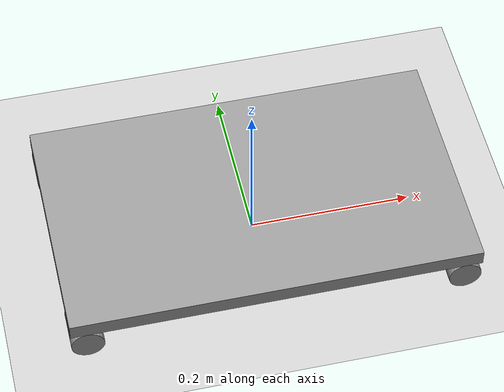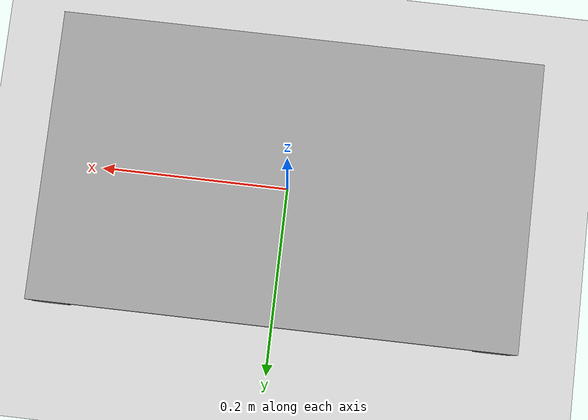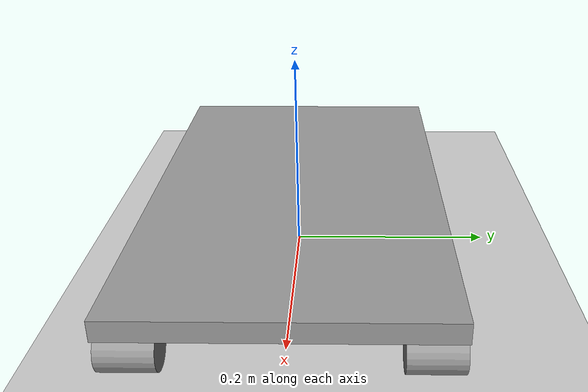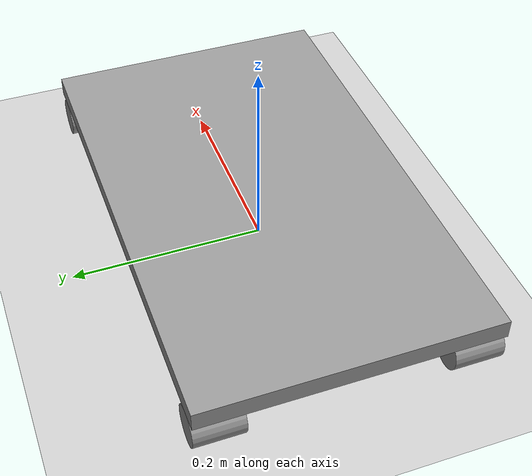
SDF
<?xml version="1.0" ?>
<sdf version="1.5">
  <world name="default">

    <!-- A global light source -->
    <include>
      <uri>model://sun</uri>
    </include>

    <!-- A ground plane -->
    <include>
      <uri>model://ground_plane</uri>
    </include>

    <model name="skate">
      <include>
        <uri>model://skate</uri>
      </include>

      <!-- Attach the plugin to this model -->
      <plugin name="skate_control" filename="libskate_plugin.so">
      </plugin>
    </model>

  </world>
</sdf>

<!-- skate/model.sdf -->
<sdf version='1.6'>
  <model name='skate'>
    <pose frame=''>0 0 0.03 0 -0 0</pose>
    <link name='roda1'>
      <pose frame=''>-0.23 -0.125 -0.006 0 -0 0</pose>
      <inertial>
        <mass>0.001</mass>
        <inertia>
          <ixx>0.145833</ixx>
          <ixy>0</ixy>
          <ixz>0</ixz>
          <iyy>0.145833</iyy>
          <iyz>0</iyz>
          <izz>0.125</izz>
        </inertia>
        <pose frame=''>0 0 0 0 -0 0</pose>
      </inertial>
      <self_collide>0</self_collide>
      <kinematic>0</kinematic>
      <visual name='visual'>
        <pose frame=''>0 0 0 1.5708 -0 0</pose>
        <geometry>
          <cylinder>
            <radius>0.02</radius>
            <length>0.05</length>
          </cylinder>
        </geometry>
        <material>
          <lighting>1</lighting>
          <script>
            <uri>file://media/materials/scripts/gazebo.material</uri>
            <name>Gazebo/Grey</name>
          </script>
          <shader type='pixel'>
            <normal_map>__default__</normal_map>
          </shader>
          <ambient>0.3 0.3 0.3 1</ambient>
          <diffuse>0.7 0.7 0.7 1</diffuse>
          <specular>0.01 0.01 0.01 1</specular>
          <emissive>0 0 0 1</emissive>
        </material>
        <transparency>0</transparency>
        <cast_shadows>1</cast_shadows>
      </visual>
      <collision name='collision'>
        <laser_retro>0</laser_retro>
        <max_contacts>10</max_contacts>
        <pose frame=''>0 0 0 1.5708 -0 0</pose>
        <geometry>
          <cylinder>
            <radius>0.02</radius>
            <length>0.05</length>
          </cylinder>
        </geometry>
        <surface>
          <friction>
            <ode>
              <mu>1</mu>
              <mu2>1</mu2>
              <fdir1>0 0 0</fdir1>
              <slip1>0</slip1>
              <slip2>0</slip2>
            </ode>
            <torsional>
              <coefficient>1</coefficient>
              <patch_radius>0</patch_radius>
              <surface_radius>0</surface_radius>
              <use_patch_radius>1</use_patch_radius>
              <ode>
                <slip>0</slip>
              </ode>
            </torsional>
          </friction>
          <bounce>
            <restitution_coefficient>0</restitution_coefficient>
            <threshold>1e+06</threshold>
          </bounce>
          <contact>
            <collide_without_contact>0</collide_without_contact>
            <collide_without_contact_bitmask>1</collide_without_contact_bitmask>
            <collide_bitmask>1</collide_bitmask>
            <ode>
              <soft_cfm>0</soft_cfm>
              <soft_erp>0.2</soft_erp>
              <kp>1e+13</kp>
              <kd>1</kd>
              <max_vel>0.01</max_vel>
              <min_depth>0</min_depth>
            </ode>
            <bullet>
              <split_impulse>1</split_impulse>
              <split_impulse_penetration_threshold>-0.01</split_impulse_penetration_threshold>
              <soft_cfm>0</soft_cfm>
              <soft_erp>0.2</soft_erp>
              <kp>1e+13</kp>
              <kd>1</kd>
            </bullet>
          </contact>
        </surface>
      </collision>
    </link>
    <link name='roda2'>
      <pose frame=''>0.23 -0.125 -0.006 0 -0 0</pose>
      <inertial>
        <mass>0.001</mass>
        <inertia>
          <ixx>0.145833</ixx>
          <ixy>0</ixy>
          <ixz>0</ixz>
          <iyy>0.145833</iyy>
          <iyz>0</iyz>
          <izz>0.125</izz>
        </inertia>
        <pose frame=''>0 0 0 0 -0 0</pose>
      </inertial>
      <self_collide>0</self_collide>
      <kinematic>0</kinematic>
      <visual name='visual'>
        <pose frame=''>0 0 0 1.5708 -0 0</pose>
        <geometry>
          <cylinder>
            <radius>0.02</radius>
            <length>0.05</length>
          </cylinder>
        </geometry>
        <material>
          <lighting>1</lighting>
          <script>
            <uri>file://media/materials/scripts/gazebo.material</uri>
            <name>Gazebo/Grey</name>
          </script>
          <shader type='pixel'>
            <normal_map>__default__</normal_map>
          </shader>
          <ambient>0.3 0.3 0.3 1</ambient>
          <diffuse>0.7 0.7 0.7 1</diffuse>
          <specular>0.01 0.01 0.01 1</specular>
          <emissive>0 0 0 1</emissive>
        </material>
        <transparency>0</transparency>
        <cast_shadows>1</cast_shadows>
      </visual>
      <collision name='collision'>
        <laser_retro>0</laser_retro>
        <max_contacts>10</max_contacts>
        <pose frame=''>0 0 0 1.5708 -0 0</pose>
        <geometry>
          <cylinder>
            <radius>0.02</radius>
            <length>0.05</length>
          </cylinder>
        </geometry>
        <surface>
          <friction>
            <ode>
              <mu>1</mu>
              <mu2>1</mu2>
              <fdir1>0 0 0</fdir1>
              <slip1>0</slip1>
              <slip2>0</slip2>
            </ode>
            <torsional>
              <coefficient>1</coefficient>
              <patch_radius>0</patch_radius>
              <surface_radius>0</surface_radius>
              <use_patch_radius>1</use_patch_radius>
              <ode>
                <slip>0</slip>
              </ode>
            </torsional>
          </friction>
          <bounce>
            <restitution_coefficient>0</restitution_coefficient>
            <threshold>1e+06</threshold>
          </bounce>
          <contact>
            <collide_without_contact>0</collide_without_contact>
            <collide_without_contact_bitmask>1</collide_without_contact_bitmask>
            <collide_bitmask>1</collide_bitmask>
            <ode>
              <soft_cfm>0</soft_cfm>
              <soft_erp>0.2</soft_erp>
              <kp>1e+13</kp>
              <kd>1</kd>
              <max_vel>0.01</max_vel>
              <min_depth>0</min_depth>
            </ode>
            <bullet>
              <split_impulse>1</split_impulse>
              <split_impulse_penetration_threshold>-0.01</split_impulse_penetration_threshold>
              <soft_cfm>0</soft_cfm>
              <soft_erp>0.2</soft_erp>
              <kp>1e+13</kp>
              <kd>1</kd>
            </bullet>
          </contact>
        </surface>
      </collision>
    </link>
    <link name='roda3'>
      <pose frame=''>-0.23 0.125 -0.006 0 -0 0</pose>
      <inertial>
        <mass>0.001</mass>
        <inertia>
          <ixx>0.145833</ixx>
          <ixy>0</ixy>
          <ixz>0</ixz>
          <iyy>0.145833</iyy>
          <iyz>0</iyz>
          <izz>0.125</izz>
        </inertia>
        <pose frame=''>0 0 0 0 -0 0</pose>
      </inertial>
      <self_collide>0</self_collide>
      <kinematic>0</kinematic>
      <visual name='visual'>
        <pose frame=''>0 0 0 1.5708 -0 0</pose>
        <geometry>
          <cylinder>
            <radius>0.02</radius>
            <length>0.05</length>
          </cylinder>
        </geometry>
        <material>
          <lighting>1</lighting>
          <script>
            <uri>file://media/materials/scripts/gazebo.material</uri>
            <name>Gazebo/Grey</name>
          </script>
          <shader type='pixel'>
            <normal_map>__default__</normal_map>
          </shader>
          <ambient>0.3 0.3 0.3 1</ambient>
          <diffuse>0.7 0.7 0.7 1</diffuse>
          <specular>0.01 0.01 0.01 1</specular>
          <emissive>0 0 0 1</emissive>
        </material>
        <transparency>0</transparency>
        <cast_shadows>1</cast_shadows>
      </visual>
      <collision name='collision'>
        <laser_retro>0</laser_retro>
        <max_contacts>10</max_contacts>
        <pose frame=''>0 0 0 1.5708 -0 0</pose>
        <geometry>
          <cylinder>
            <radius>0.02</radius>
            <length>0.05</length>
          </cylinder>
        </geometry>
        <surface>
          <friction>
            <ode>
              <mu>1</mu>
              <mu2>1</mu2>
              <fdir1>0 0 0</fdir1>
              <slip1>0</slip1>
              <slip2>0</slip2>
            </ode>
            <torsional>
              <coefficient>1</coefficient>
              <patch_radius>0</patch_radius>
              <surface_radius>0</surface_radius>
              <use_patch_radius>1</use_patch_radius>
              <ode>
                <slip>0</slip>
              </ode>
            </torsional>
          </friction>
          <bounce>
            <restitution_coefficient>0</restitution_coefficient>
            <threshold>1e+06</threshold>
          </bounce>
          <contact>
            <collide_without_contact>0</collide_without_contact>
            <collide_without_contact_bitmask>1</collide_without_contact_bitmask>
            <collide_bitmask>1</collide_bitmask>
            <ode>
              <soft_cfm>0</soft_cfm>
              <soft_erp>0.2</soft_erp>
              <kp>1e+13</kp>
              <kd>1</kd>
              <max_vel>0.01</max_vel>
              <min_depth>0</min_depth>
            </ode>
            <bullet>
              <split_impulse>1</split_impulse>
              <split_impulse_penetration_threshold>-0.01</split_impulse_penetration_threshold>
              <soft_cfm>0</soft_cfm>
              <soft_erp>0.2</soft_erp>
              <kp>1e+13</kp>
              <kd>1</kd>
            </bullet>
          </contact>
        </surface>
      </collision>
    </link>
    <link name='roda4'>
      <pose frame=''>0.23 0.125 -0.006 0 -0 0</pose>
      <inertial>
        <mass>0.001</mass>
        <inertia>
          <ixx>0.145833</ixx>
          <ixy>0</ixy>
          <ixz>0</ixz>
          <iyy>0.145833</iyy>
          <iyz>0</iyz>
          <izz>0.125</izz>
        </inertia>
        <pose frame=''>0 0 0 0 -0 0</pose>
      </inertial>
      <self_collide>0</self_collide>
      <kinematic>0</kinematic>
      <visual name='visual'>
        <pose frame=''>0 0 0 1.5708 -0 0</pose>
        <geometry>
          <cylinder>
            <radius>0.02</radius>
            <length>0.05</length>
          </cylinder>
        </geometry>
        <material>
          <lighting>1</lighting>
          <script>
            <uri>file://media/materials/scripts/gazebo.material</uri>
            <name>Gazebo/Grey</name>
          </script>
          <shader type='pixel'>
            <normal_map>__default__</normal_map>
          </shader>
          <ambient>0.3 0.3 0.3 1</ambient>
          <diffuse>0.7 0.7 0.7 1</diffuse>
          <specular>0.01 0.01 0.01 1</specular>
          <emissive>0 0 0 1</emissive>
        </material>
        <transparency>0</transparency>
        <cast_shadows>1</cast_shadows>
      </visual>
      <collision name='collision'>
        <laser_retro>0</laser_retro>
        <max_contacts>10</max_contacts>
        <pose frame=''>0 0 0 1.5708 -0 0</pose>
        <geometry>
          <cylinder>
            <radius>0.02</radius>
            <length>0.05</length>
          </cylinder>
        </geometry>
        <surface>
          <friction>
            <ode>
              <mu>1</mu>
              <mu2>1</mu2>
              <fdir1>0 0 0</fdir1>
              <slip1>0</slip1>
              <slip2>0</slip2>
            </ode>
            <torsional>
              <coefficient>1</coefficient>
              <patch_radius>0</patch_radius>
              <surface_radius>0</surface_radius>
              <use_patch_radius>1</use_patch_radius>
              <ode>
                <slip>0</slip>
              </ode>
            </torsional>
          </friction>
          <bounce>
            <restitution_coefficient>0</restitution_coefficient>
            <threshold>1e+06</threshold>
          </bounce>
          <contact>
            <collide_without_contact>0</collide_without_contact>
            <collide_without_contact_bitmask>1</collide_without_contact_bitmask>
            <collide_bitmask>1</collide_bitmask>
            <ode>
              <soft_cfm>0</soft_cfm>
              <soft_erp>0.2</soft_erp>
              <kp>1e+13</kp>
              <kd>1</kd>
              <max_vel>0.01</max_vel>
              <min_depth>0</min_depth>
            </ode>
            <bullet>
              <split_impulse>1</split_impulse>
              <split_impulse_penetration_threshold>-0.01</split_impulse_penetration_threshold>
              <soft_cfm>0</soft_cfm>
              <soft_erp>0.2</soft_erp>
              <kp>1e+13</kp>
              <kd>1</kd>
            </bullet>
          </contact>
        </surface>
      </collision>
    </link>
    <link name='mainFrame'>
      <pose frame=''>0 0 0.024 0 -0 0</pose>
      <inertial>
        <mass>2</mass>
        <inertia>
          <ixx>0.166667</ixx>
          <ixy>0</ixy>
          <ixz>0</ixz>
          <iyy>0.166667</iyy>
          <iyz>0</iyz>
          <izz>0.166667</izz>
        </inertia>
        <pose frame=''>0 0 0 0 -0 0</pose>
      </inertial>
      <self_collide>0</self_collide>
      <kinematic>0</kinematic>
      <gravity>1</gravity>
      <visual name='visual'>
        <pose frame=''>0 0 0 0 -0 0</pose>
        <geometry>
          <box>
            <size>0.5 0.3 0.02</size>
          </box>
        </geometry>
        <material>
          <lighting>1</lighting>
          <script>
            <uri>file://media/materials/scripts/gazebo.material</uri>
            <name>Gazebo/Grey</name>
          </script>
          <shader type='normal_map_tangent_space'>
            <normal_map>__default__</normal_map>
          </shader>
          <ambient>1 1 1 1</ambient>
          <diffuse>0.7 0.7 0.7 1</diffuse>
          <specular>0.01 0.01 0.01 1</specular>
          <emissive>0 0 0 1</emissive>
        </material>
        <transparency>0</transparency>
        <cast_shadows>1</cast_shadows>
      </visual>
      <collision name='collision'>
        <laser_retro>0</laser_retro>
        <max_contacts>10</max_contacts>
        <pose frame=''>0 0 0 0 -0 0</pose>
        <geometry>
          <box>
            <size>0.5 0.3 0.02</size>
          </box>
        </geometry>
        <surface>
          <friction>
            <ode>
              <mu>1</mu>
              <mu2>1</mu2>
              <fdir1>0 0 0</fdir1>
              <slip1>0</slip1>
              <slip2>0</slip2>
            </ode>
            <torsional>
              <coefficient>1</coefficient>
              <patch_radius>0</patch_radius>
              <surface_radius>0</surface_radius>
              <use_patch_radius>1</use_patch_radius>
              <ode>
                <slip>0</slip>
              </ode>
            </torsional>
          </friction>
          <bounce>
            <restitution_coefficient>0</restitution_coefficient>
            <threshold>1e+06</threshold>
          </bounce>
          <contact>
            <collide_without_contact>0</collide_without_contact>
            <collide_without_contact_bitmask>1</collide_without_contact_bitmask>
            <collide_bitmask>1</collide_bitmask>
            <ode>
              <soft_cfm>0</soft_cfm>
              <soft_erp>0.2</soft_erp>
              <kp>1e+13</kp>
              <kd>1</kd>
              <max_vel>0.01</max_vel>
              <min_depth>0</min_depth>
            </ode>
            <bullet>
              <split_impulse>1</split_impulse>
              <split_impulse_penetration_threshold>-0.01</split_impulse_penetration_threshold>
              <soft_cfm>0</soft_cfm>
              <soft_erp>0.2</soft_erp>
              <kp>1e+13</kp>
              <kd>1</kd>
            </bullet>
          </contact>
        </surface>
      </collision>
    </link>
    <joint name='mainFrame_Roda1' type='revolute'>
      <parent>mainFrame</parent>
      <child>roda1</child>
      <pose frame=''>0 0 0 0 -0 0</pose>
      <axis>
        <xyz>0 1 0</xyz>
        <use_parent_model_frame>0</use_parent_model_frame>
        <limit>
          <lower>-1.79769e+308</lower>
          <upper>1.79769e+308</upper>
          <effort>-1</effort>
          <velocity>-1</velocity>
        </limit>
        <dynamics>
          <spring_reference>0</spring_reference>
          <spring_stiffness>0</spring_stiffness>
          <damping>0</damping>
          <friction>0</friction>
        </dynamics>
      </axis>
      <physics>
        <ode>
          <limit>
            <cfm>0</cfm>
            <erp>0.2</erp>
          </limit>
          <suspension>
            <cfm>0</cfm>
            <erp>0.2</erp>
          </suspension>
        </ode>
      </physics>
    </joint>
    <joint name='mainFrame_Roda2' type='revolute'>
      <parent>mainFrame</parent>
      <child>roda2</child>
      <pose frame=''>0 0 0 0 -0 0</pose>
      <axis>
        <xyz>0 1 0</xyz>
        <use_parent_model_frame>0</use_parent_model_frame>
        <limit>
          <lower>-1.79769e+308</lower>
          <upper>1.79769e+308</upper>
          <effort>-1</effort>
          <velocity>-1</velocity>
        </limit>
        <dynamics>
          <spring_reference>0</spring_reference>
          <spring_stiffness>0</spring_stiffness>
          <damping>0</damping>
          <friction>0</friction>
        </dynamics>
      </axis>
      <physics>
        <ode>
          <limit>
            <cfm>0</cfm>
            <erp>0.2</erp>
          </limit>
          <suspension>
            <cfm>0</cfm>
            <erp>0.2</erp>
          </suspension>
        </ode>
      </physics>
    </joint>
    <joint name='mainFrame_Roda3' type='revolute'>
      <parent>mainFrame</parent>
      <child>roda3</child>
      <pose frame=''>0 0 0 0 -0 0</pose>
      <axis>
        <xyz>0 1 0</xyz>
        <use_parent_model_frame>0</use_parent_model_frame>
        <limit>
          <lower>-1.79769e+308</lower>
          <upper>1.79769e+308</upper>
          <effort>-1</effort>
          <velocity>-1</velocity>
        </limit>
        <dynamics>
          <spring_reference>0</spring_reference>
          <spring_stiffness>0</spring_stiffness>
          <damping>0</damping>
          <friction>0</friction>
        </dynamics>
      </axis>
      <physics>
        <ode>
          <limit>
            <cfm>0</cfm>
            <erp>0.2</erp>
          </limit>
          <suspension>
            <cfm>0</cfm>
            <erp>0.2</erp>
          </suspension>
        </ode>
      </physics>
    </joint>
    <joint name='mainFrame_Roda4' type='revolute'>
      <parent>mainFrame</parent>
      <child>roda4</child>
      <pose frame=''>0 0 0 0 -0 0</pose>
      <axis>
        <xyz>0 1 0</xyz>
        <use_parent_model_frame>0</use_parent_model_frame>
        <limit>
          <lower>-1.79769e+308</lower>
          <upper>1.79769e+308</upper>
          <effort>-1</effort>
          <velocity>-1</velocity>
        </limit>
        <dynamics>
          <spring_reference>0</spring_reference>
          <spring_stiffness>0</spring_stiffness>
          <damping>0</damping>
          <friction>0</friction>
        </dynamics>
      </axis>
      <physics>
        <ode>
          <limit>
            <cfm>0</cfm>
            <erp>0.2</erp>
          </limit>
          <suspension>
            <cfm>0</cfm>
            <erp>0.2</erp>
          </suspension>
        </ode>
      </physics>
    </joint>
    <static>0</static>
    <allow_auto_disable>1</allow_auto_disable>
  </model>
</sdf>
